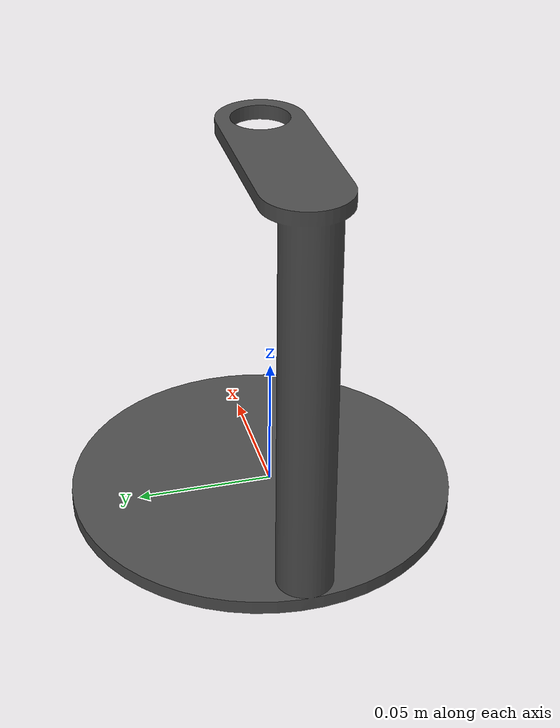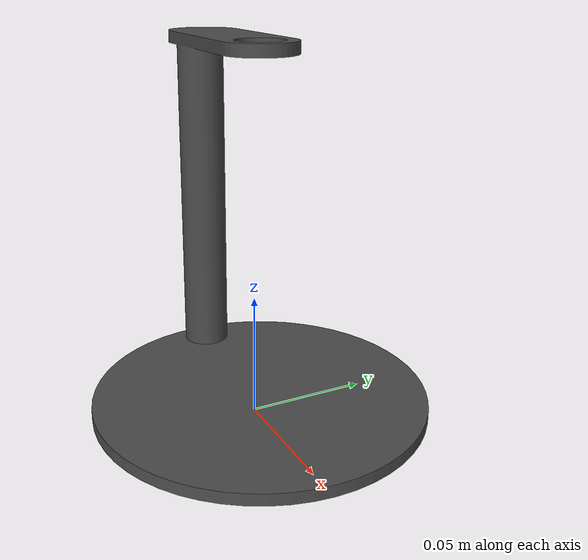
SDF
<?xml version="1.0" ?>
<sdf version="1.5">
  <model name="pH_meter_stand">
    <static>true</static>
    <link name="link">
      <visual name="visual">
        <geometry>
          <mesh>
            <uri>model://pH_meter_stand/meshes/pH_meter_stand.dae</uri>
          </mesh>
        </geometry>
        <material>
          <script>
            <uri>file://media/materials/scripts/gazebo.material</uri>
            <name>Gazebo/DarkGrey</name>
          </script>
          <ambient>1 1 1 1</ambient>
        </material>
      </visual>
      <!-- collision -->
      <collision name="collision">
        <geometry>
          <mesh>
            <uri>model://pH_meter_stand/meshes/pH_meter_stand.dae</uri>
          </mesh>
        </geometry>
        <surface>
          <friction>
            <ode>
              <mu>10</mu>
              <mu2>10</mu2>
            </ode>
          </friction>
        </surface>
      </collision>
    </link>
  </model>

</sdf>
